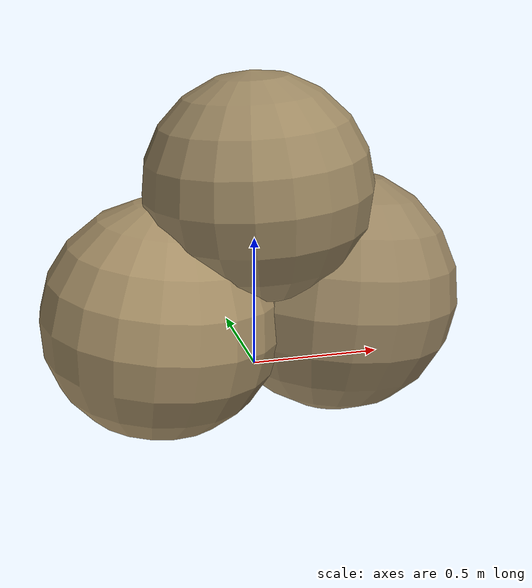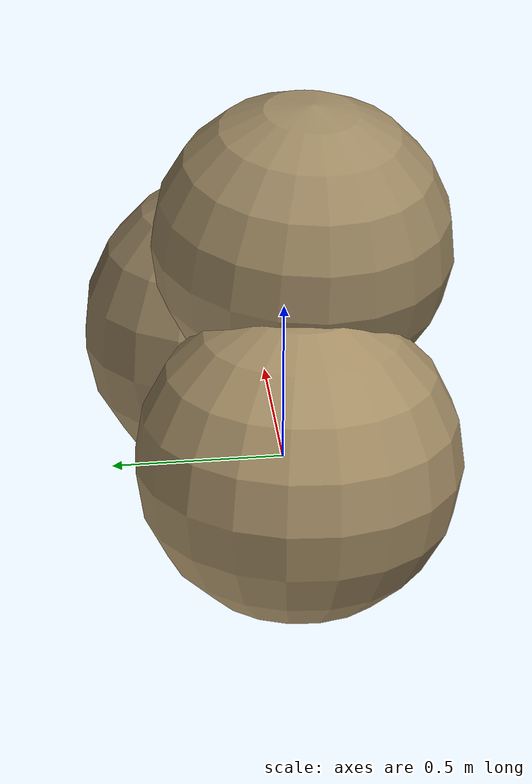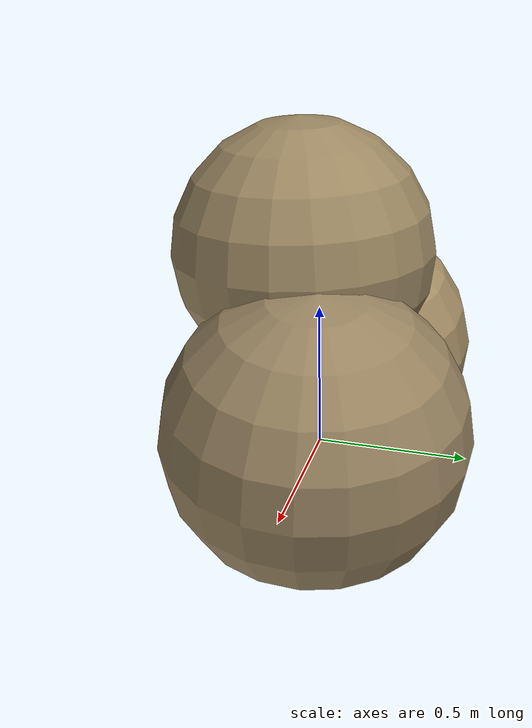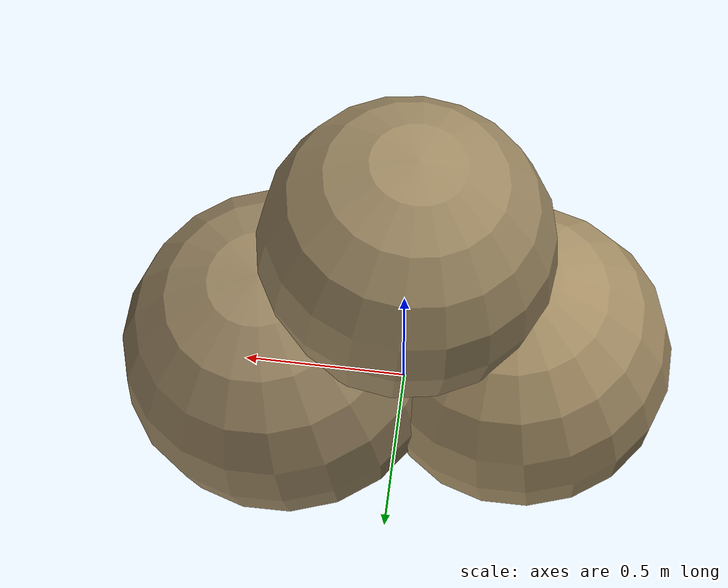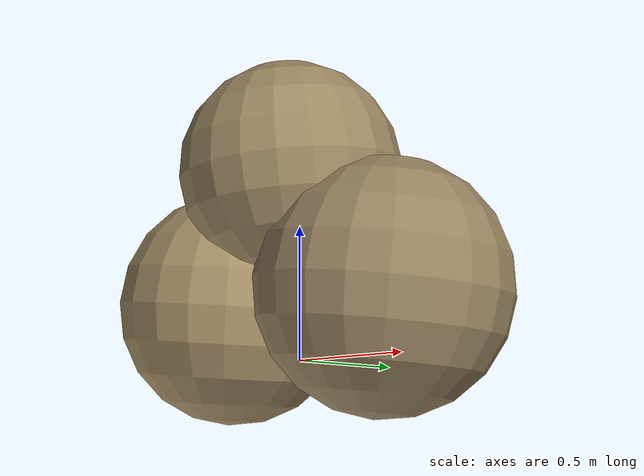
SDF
<?xml version="1.0"?>
<sdf version="1.6">
  <model name="sack_stack">
    <static>true</static>
    <link name="sacks">
      <pose>0 0 0 0 0 0</pose>
      <collision name="collision">
        <pose>0 0 0.35 0 0 0</pose>
        <geometry>
          <box>
            <size>1.6 0.9 0.7</size>
          </box>
        </geometry>
      </collision>
      <visual name="sack_1">
        <pose>-0.35 0 0.22 0.04 0.10 0.12</pose>
        <geometry>
          <sphere>
            <radius>0.45</radius>
          </sphere>
        </geometry>
        <material>
          <ambient>0.52 0.45 0.32 1</ambient>
          <diffuse>0.65 0.56 0.40 1</diffuse>
        </material>
      </visual>
      <visual name="sack_2">
        <pose>0.35 0.08 0.25 -0.05 0.08 -0.18</pose>
        <geometry>
          <sphere>
            <radius>0.48</radius>
          </sphere>
        </geometry>
        <material>
          <ambient>0.48 0.41 0.30 1</ambient>
          <diffuse>0.60 0.52 0.38 1</diffuse>
        </material>
      </visual>
      <visual name="sack_3">
        <pose>0.0 -0.05 0.70 0.02 -0.08 0.35</pose>
        <geometry>
          <sphere>
            <radius>0.42</radius>
          </sphere>
        </geometry>
        <material>
          <ambient>0.50 0.43 0.31 1</ambient>
          <diffuse>0.62 0.54 0.39 1</diffuse>
        </material>
      </visual>
    </link>
  </model>
</sdf>
